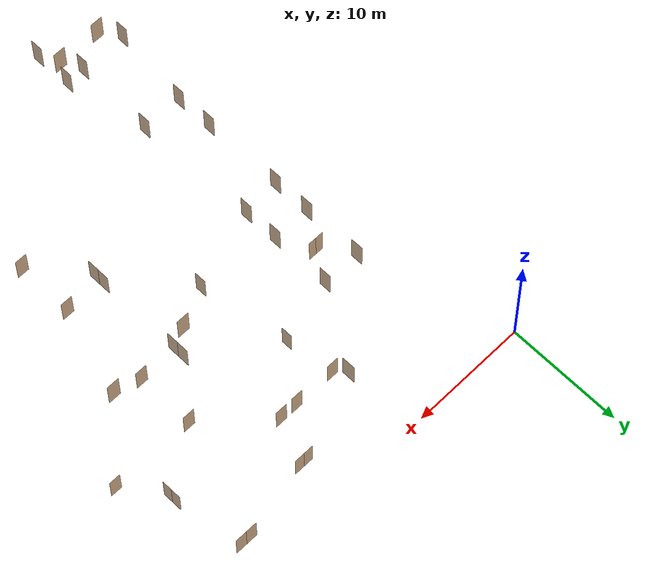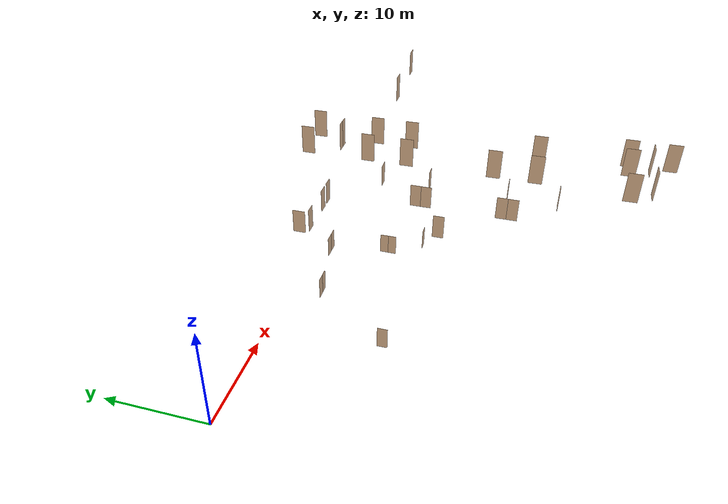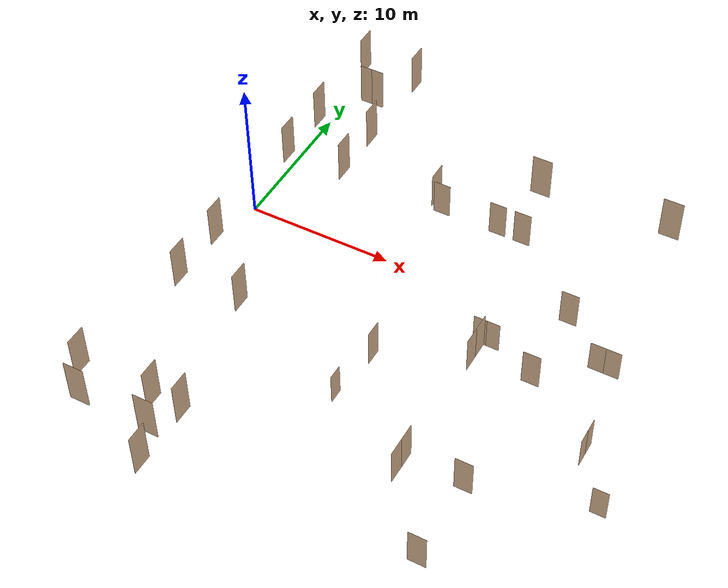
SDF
<sdf version="1.7">
 <world name="world">
  <include><uri>model://sun</uri></include>
  <model name="l1_door17">
   <pose>27.450000000000003 -8.125 0.0 0 0 -1.5707963267948966</pose>
   <link name="right">
    <pose>-0.4375 0 1.11 0 0 0</pose>
    <visual name="right_visual">
     <geometry><box><size>0.865 0.03 2.2</size></box></geometry>
     <material><ambient>0.5 0.25 0 0.6</ambient><diffuse>0.5 0.25 0 0.6</diffuse></material>
    </visual>
    <collision name="right_collision">
     <geometry><box><size>0.865 0.03 2.2</size></box></geometry>
     <surface><contact><collide_bitmask>0x02</collide_bitmask></contact></surface>
    </collision>
    <inertial>
     <mass>50.0</mass>
     <inertia><ixx>20.17041666666667</ixx><iyy>23.284270833333338</iyy><izz>3.121354166666667</izz></inertia>
    </inertial>
   </link>
   <joint name="right_joint" type="revolute">
    <parent>world</parent>
    <child>right</child>
    <axis><xyz>0 0 1</xyz><limit><lower>0</lower><upper>1.57</upper></limit></axis>
    <pose>-0.4375 0 0 0 0 0</pose>
   </joint>
   <link name="left">
    <pose>0.4375 0 1.11 0 0 0</pose>
    <visual name="left_visual">
     <geometry><box><size>0.865 0.03 2.2</size></box></geometry>
     <material><ambient>0.5 0.25 0 0.6</ambient><diffuse>0.5 0.25 0 0.6</diffuse></material>
    </visual>
    <collision name="left_collision">
     <geometry><box><size>0.865 0.03 2.2</size></box></geometry>
     <surface><contact><collide_bitmask>0x02</collide_bitmask></contact></surface>
    </collision>
    <inertial>
     <mass>50.0</mass>
     <inertia><ixx>20.17041666666667</ixx><iyy>23.284270833333338</iyy><izz>3.121354166666667</izz></inertia>
    </inertial>
   </link>
   <joint name="left_joint" type="revolute">
    <parent>world</parent>
    <child>left</child>
    <axis><xyz>0 0 1</xyz><limit><lower>-1.57</lower><upper>0</upper></limit></axis>
    <pose>0.4375 0 0 0 0 0</pose>
   </joint>
   <plugin name="door" filename="libdoor.so">
    <v_max_door>0.5</v_max_door>
    <a_max_door>0.3</a_max_door>
    <a_nom_door>0.15</a_nom_door>
    <dx_min_door>0.01</dx_min_door>
    <f_max_door>500.0</f_max_door>
    <door name="l1_door17" type="DoubleSwingDoor" left_joint_name="left_joint" right_joint_name="right_joint"/>
   </plugin>
  </model>
  <model name="dining_4">
   <pose>29.75 -11.600000000000001 0.0 0 0 3.141592653589793</pose>
   <plugin name="door" filename="libdoor.so">
    <v_max_door>0.5</v_max_door>
    <a_max_door>0.3</a_max_door>
    <a_nom_door>0.15</a_nom_door>
    <dx_min_door>0.01</dx_min_door>
    <f_max_door>500.0</f_max_door>
    <door name="dining_4" type="SwingDoor" left_joint_name="left_joint" right_joint_name="empty_joint"/>
   </plugin>
   <link name="left">
    <pose>0 0 1.11 0 0 0</pose>
    <visual name="left_visual">
     <geometry><box><size>0.99 0.03 2.2</size></box></geometry>
     <material><ambient>0.5 0.25 0 0.6</ambient><diffuse>0.5 0.25 0 0.6</diffuse></material>
    </visual>
    <collision name="left_collision">
     <geometry><box><size>0.99 0.03 2.2</size></box></geometry>
     <surface><contact><collide_bitmask>0x02</collide_bitmask></contact></surface>
    </collision>
    <inertial>
     <mass>50.0</mass>
     <inertia><ixx>20.17041666666667</ixx><iyy>24.250416666666673</iyy><izz>4.0875</izz></inertia>
    </inertial>
   </link>
   <joint name="left_joint" type="revolute">
    <parent>world</parent>
    <child>left</child>
    <axis><xyz>0 0 1</xyz><limit><lower>-1.57</lower><upper>0</upper></limit></axis>
    <pose>0.5 0 0 0 0 0</pose>
   </joint>
  </model>
  <model name="terrace">
   <pose>12.75 -11.25 0.0 0 0 1.5707963267948966</pose>
   <plugin name="door" filename="libdoor.so">
    <v_max_door>0.5</v_max_door>
    <a_max_door>0.3</a_max_door>
    <a_nom_door>0.15</a_nom_door>
    <dx_min_door>0.01</dx_min_door>
    <f_max_door>500.0</f_max_door>
    <door name="terrace" type="SwingDoor" left_joint_name="left_joint" right_joint_name="empty_joint"/>
   </plugin>
   <link name="left">
    <pose>0 0 1.11 0 0 0</pose>
    <visual name="left_visual">
     <geometry><box><size>0.99 0.03 2.2</size></box></geometry>
     <material><ambient>0.5 0.25 0 0.6</ambient><diffuse>0.5 0.25 0 0.6</diffuse></material>
    </visual>
    <collision name="left_collision">
     <geometry><box><size>0.99 0.03 2.2</size></box></geometry>
     <surface><contact><collide_bitmask>0x02</collide_bitmask></contact></surface>
    </collision>
    <inertial>
     <mass>50.0</mass>
     <inertia><ixx>20.17041666666667</ixx><iyy>24.250416666666673</iyy><izz>4.0875</izz></inertia>
    </inertial>
   </link>
   <joint name="left_joint" type="revolute">
    <parent>world</parent>
    <child>left</child>
    <axis><xyz>0 0 1</xyz><limit><lower>-1.57</lower><upper>0</upper></limit></axis>
    <pose>0.5 0 0 0 0 0</pose>
   </joint>
  </model>
  <model name="l1_door19">
   <pose>18.775000000000002 -3.4000000000000004 0.0 0 0 3.141592653589793</pose>
   <link name="right">
    <pose>0.4375 0 1.11 0 0 0</pose>
    <visual name="right_visual">
     <geometry><box><size>0.865 0.03 2.2</size></box></geometry>
     <material><ambient>0.5 0.25 0 0.6</ambient><diffuse>0.5 0.25 0 0.6</diffuse></material>
    </visual>
    <collision name="right_collision">
     <geometry><box><size>0.865 0.03 2.2</size></box></geometry>
     <surface><contact><collide_bitmask>0x02</collide_bitmask></contact></surface>
    </collision>
    <inertial>
     <mass>50.0</mass>
     <inertia><ixx>20.17041666666667</ixx><iyy>23.284270833333338</iyy><izz>3.121354166666667</izz></inertia>
    </inertial>
   </link>
   <joint name="right_joint" type="revolute">
    <parent>world</parent>
    <child>right</child>
    <axis><xyz>0 0 1</xyz><limit><lower>0</lower><upper>1.57</upper></limit></axis>
    <pose>0.4375 0 0 0 0 0</pose>
   </joint>
   <link name="left">
    <pose>-0.4375 0 1.11 0 0 0</pose>
    <visual name="left_visual">
     <geometry><box><size>0.865 0.03 2.2</size></box></geometry>
     <material><ambient>0.5 0.25 0 0.6</ambient><diffuse>0.5 0.25 0 0.6</diffuse></material>
    </visual>
    <collision name="left_collision">
     <geometry><box><size>0.865 0.03 2.2</size></box></geometry>
     <surface><contact><collide_bitmask>0x02</collide_bitmask></contact></surface>
    </collision>
    <inertial>
     <mass>50.0</mass>
     <inertia><ixx>20.17041666666667</ixx><iyy>23.284270833333338</iyy><izz>3.121354166666667</izz></inertia>
    </inertial>
   </link>
   <joint name="left_joint" type="revolute">
    <parent>world</parent>
    <child>left</child>
    <axis><xyz>0 0 1</xyz><limit><lower>-1.57</lower><upper>0</upper></limit></axis>
    <pose>-0.4375 0 0 0 0 0</pose>
   </joint>
   <plugin name="door" filename="libdoor.so">
    <v_max_door>0.5</v_max_door>
    <a_max_door>0.3</a_max_door>
    <a_nom_door>0.15</a_nom_door>
    <dx_min_door>0.01</dx_min_door>
    <f_max_door>500.0</f_max_door>
    <door name="l1_door19" type="DoubleSwingDoor" left_joint_name="left_joint" right_joint_name="right_joint"/>
   </plugin>
  </model>
  <model name="l1_door18">
   <pose>25.950000000000003 -2.0 0.0 0 0 3.141592653589793</pose>
   <link name="right">
    <pose>0.5 0 1.11 0 0 0</pose>
    <visual name="right_visual">
     <geometry><box><size>0.99 0.03 2.2</size></box></geometry>
     <material><ambient>0.5 0.25 0 0.6</ambient><diffuse>0.5 0.25 0 0.6</diffuse></material>
    </visual>
    <collision name="right_collision">
     <geometry><box><size>0.99 0.03 2.2</size></box></geometry>
     <surface><contact><collide_bitmask>0x02</collide_bitmask></contact></surface>
    </collision>
    <inertial>
     <mass>50.0</mass>
     <inertia><ixx>20.17041666666667</ixx><iyy>24.250416666666673</iyy><izz>4.0875</izz></inertia>
    </inertial>
   </link>
   <joint name="right_joint" type="revolute">
    <parent>world</parent>
    <child>right</child>
    <axis><xyz>0 0 1</xyz><limit><lower>0</lower><upper>1.57</upper></limit></axis>
    <pose>0.5 0 0 0 0 0</pose>
   </joint>
   <link name="left">
    <pose>-0.5 0 1.11 0 0 0</pose>
    <visual name="left_visual">
     <geometry><box><size>0.99 0.03 2.2</size></box></geometry>
     <material><ambient>0.5 0.25 0 0.6</ambient><diffuse>0.5 0.25 0 0.6</diffuse></material>
    </visual>
    <collision name="left_collision">
     <geometry><box><size>0.99 0.03 2.2</size></box></geometry>
     <surface><contact><collide_bitmask>0x02</collide_bitmask></contact></surface>
    </collision>
    <inertial>
     <mass>50.0</mass>
     <inertia><ixx>20.17041666666667</ixx><iyy>24.250416666666673</iyy><izz>4.0875</izz></inertia>
    </inertial>
   </link>
   <joint name="left_joint" type="revolute">
    <parent>world</parent>
    <child>left</child>
    <axis><xyz>0 0 1</xyz><limit><lower>-1.57</lower><upper>0</upper></limit></axis>
    <pose>-0.5 0 0 0 0 0</pose>
   </joint>
   <plugin name="door" filename="libdoor.so">
    <v_max_door>0.5</v_max_door>
    <a_max_door>0.3</a_max_door>
    <a_nom_door>0.15</a_nom_door>
    <dx_min_door>0.01</dx_min_door>
    <f_max_door>500.0</f_max_door>
    <door name="l1_door18" type="DoubleSwingDoor" left_joint_name="left_joint" right_joint_name="right_joint"/>
   </plugin>
  </model>
  <model name="conf_door1">
   <pose>15.600000000000001 -3.6500000000000004 10.0 0 0 3.141592653589793</pose>
   <plugin name="door" filename="libdoor.so">
    <v_max_door>0.5</v_max_door>
    <a_max_door>0.3</a_max_door>
    <a_nom_door>0.15</a_nom_door>
    <dx_min_door>0.01</dx_min_door>
    <f_max_door>500.0</f_max_door>
    <door name="conf_door1" type="SwingDoor" left_joint_name="left_joint" right_joint_name="empty_joint"/>
   </plugin>
   <link name="left">
    <pose>0 0 1.11 0 0 0</pose>
    <visual name="left_visual">
     <geometry><box><size>0.9900000000000018 0.03 2.2</size></box></geometry>
     <material><ambient>0.5 0.25 0 0.6</ambient><diffuse>0.5 0.25 0 0.6</diffuse></material>
    </visual>
    <collision name="left_collision">
     <geometry><box><size>0.9900000000000018 0.03 2.2</size></box></geometry>
     <surface><contact><collide_bitmask>0x02</collide_bitmask></contact></surface>
    </collision>
    <inertial>
     <mass>50.0</mass>
     <inertia><ixx>20.17041666666667</ixx><iyy>24.250416666666688</iyy><izz>4.0875000000000155</izz></inertia>
    </inertial>
   </link>
   <joint name="left_joint" type="revolute">
    <parent>world</parent>
    <child>left</child>
    <axis><xyz>0 0 1</xyz><limit><lower>-1.57</lower><upper>0</upper></limit></axis>
    <pose>0.5000000000000009 0 0 0 0 0</pose>
   </joint>
  </model>
  <model name="conf_door2">
   <pose>19.1 -3.6500000000000004 10.0 0 0 0.0</pose>
   <plugin name="door" filename="libdoor.so">
    <v_max_door>0.5</v_max_door>
    <a_max_door>0.3</a_max_door>
    <a_nom_door>0.15</a_nom_door>
    <dx_min_door>0.01</dx_min_door>
    <f_max_door>500.0</f_max_door>
    <door name="conf_door2" type="SwingDoor" left_joint_name="empty_joint" right_joint_name="right_joint"/>
   </plugin>
   <link name="right">
    <pose>0 0 1.11 0 0 0</pose>
    <visual name="right_visual">
     <geometry><box><size>0.99 0.03 2.2</size></box></geometry>
     <material><ambient>0.5 0.25 0 0.6</ambient><diffuse>0.5 0.25 0 0.6</diffuse></material>
    </visual>
    <collision name="right_collision">
     <geometry><box><size>0.99 0.03 2.2</size></box></geometry>
     <surface><contact><collide_bitmask>0x02</collide_bitmask></contact></surface>
    </collision>
    <inertial>
     <mass>50.0</mass>
     <inertia><ixx>20.17041666666667</ixx><iyy>24.250416666666673</iyy><izz>4.0875</izz></inertia>
    </inertial>
   </link>
   <joint name="right_joint" type="revolute">
    <parent>world</parent>
    <child>right</child>
    <axis><xyz>0 0 1</xyz><limit><lower>0</lower><upper>1.57</upper></limit></axis>
    <pose>0.5 0 0 0 0 0</pose>
   </joint>
  </model>
  <model name="conf_door3">
   <pose>20.6 -3.6500000000000004 10.0 0 0 3.141592653589793</pose>
   <plugin name="door" filename="libdoor.so">
    <v_max_door>0.5</v_max_door>
    <a_max_door>0.3</a_max_door>
    <a_nom_door>0.15</a_nom_door>
    <dx_min_door>0.01</dx_min_door>
    <f_max_door>500.0</f_max_door>
    <door name="conf_door3" type="SwingDoor" left_joint_name="left_joint" right_joint_name="empty_joint"/>
   </plugin>
   <link name="left">
    <pose>0 0 1.11 0 0 0</pose>
    <visual name="left_visual">
     <geometry><box><size>0.99 0.03 2.2</size></box></geometry>
     <material><ambient>0.5 0.25 0 0.6</ambient><diffuse>0.5 0.25 0 0.6</diffuse></material>
    </visual>
    <collision name="left_collision">
     <geometry><box><size>0.99 0.03 2.2</size></box></geometry>
     <surface><contact><collide_bitmask>0x02</collide_bitmask></contact></surface>
    </collision>
    <inertial>
     <mass>50.0</mass>
     <inertia><ixx>20.17041666666667</ixx><iyy>24.250416666666673</iyy><izz>4.0875</izz></inertia>
    </inertial>
   </link>
   <joint name="left_joint" type="revolute">
    <parent>world</parent>
    <child>left</child>
    <axis><xyz>0 0 1</xyz><limit><lower>-1.57</lower><upper>0</upper></limit></axis>
    <pose>0.5 0 0 0 0 0</pose>
   </joint>
  </model>
  <model name="conf_kitchen_door1">
   <pose>22.1 -12.4 10.0 0 0 1.5707963267948966</pose>
   <link name="right">
    <pose>0.5 0 1.11 0 0 0</pose>
    <visual name="right_visual">
     <geometry><box><size>0.99 0.03 2.2</size></box></geometry>
     <material><ambient>0.5 0.25 0 0.6</ambient><diffuse>0.5 0.25 0 0.6</diffuse></material>
    </visual>
    <collision name="right_collision">
     <geometry><box><size>0.99 0.03 2.2</size></box></geometry>
     <surface><contact><collide_bitmask>0x02</collide_bitmask></contact></surface>
    </collision>
    <inertial>
     <mass>50.0</mass>
     <inertia><ixx>20.17041666666667</ixx><iyy>24.250416666666673</iyy><izz>4.0875</izz></inertia>
    </inertial>
   </link>
   <joint name="right_joint" type="revolute">
    <parent>world</parent>
    <child>right</child>
    <axis><xyz>0 0 1</xyz><limit><lower>0</lower><upper>1.57</upper></limit></axis>
    <pose>0.5 0 0 0 0 0</pose>
   </joint>
   <link name="left">
    <pose>-0.5 0 1.11 0 0 0</pose>
    <visual name="left_visual">
     <geometry><box><size>0.99 0.03 2.2</size></box></geometry>
     <material><ambient>0.5 0.25 0 0.6</ambient><diffuse>0.5 0.25 0 0.6</diffuse></material>
    </visual>
    <collision name="left_collision">
     <geometry><box><size>0.99 0.03 2.2</size></box></geometry>
     <surface><contact><collide_bitmask>0x02</collide_bitmask></contact></surface>
    </collision>
    <inertial>
     <mass>50.0</mass>
     <inertia><ixx>20.17041666666667</ixx><iyy>24.250416666666673</iyy><izz>4.0875</izz></inertia>
    </inertial>
   </link>
   <joint name="left_joint" type="revolute">
    <parent>world</parent>
    <child>left</child>
    <axis><xyz>0 0 1</xyz><limit><lower>-1.57</lower><upper>0</upper></limit></axis>
    <pose>-0.5 0 0 0 0 0</pose>
   </joint>
   <plugin name="door" filename="libdoor.so">
    <v_max_door>0.5</v_max_door>
    <a_max_door>0.3</a_max_door>
    <a_nom_door>0.15</a_nom_door>
    <dx_min_door>0.01</dx_min_door>
    <f_max_door>500.0</f_max_door>
    <door name="conf_kitchen_door1" type="DoubleSwingDoor" left_joint_name="left_joint" right_joint_name="right_joint"/>
   </plugin>
  </model>
  <model name="conf_kitchen_door2">
   <pose>22.1 -20.5 10.0 0 0 1.5707963267948966</pose>
   <link name="right">
    <pose>0.5 0 1.11 0 0 0</pose>
    <visual name="right_visual">
     <geometry><box><size>0.99 0.03 2.2</size></box></geometry>
     <material><ambient>0.5 0.25 0 0.6</ambient><diffuse>0.5 0.25 0 0.6</diffuse></material>
    </visual>
    <collision name="right_collision">
     <geometry><box><size>0.99 0.03 2.2</size></box></geometry>
     <surface><contact><collide_bitmask>0x02</collide_bitmask></contact></surface>
    </collision>
    <inertial>
     <mass>50.0</mass>
     <inertia><ixx>20.17041666666667</ixx><iyy>24.250416666666673</iyy><izz>4.0875</izz></inertia>
    </inertial>
   </link>
   <joint name="right_joint" type="revolute">
    <parent>world</parent>
    <child>right</child>
    <axis><xyz>0 0 1</xyz><limit><lower>0</lower><upper>1.57</upper></limit></axis>
    <pose>0.5 0 0 0 0 0</pose>
   </joint>
   <link name="left">
    <pose>-0.5 0 1.11 0 0 0</pose>
    <visual name="left_visual">
     <geometry><box><size>0.99 0.03 2.2</size></box></geometry>
     <material><ambient>0.5 0.25 0 0.6</ambient><diffuse>0.5 0.25 0 0.6</diffuse></material>
    </visual>
    <collision name="left_collision">
     <geometry><box><size>0.99 0.03 2.2</size></box></geometry>
     <surface><contact><collide_bitmask>0x02</collide_bitmask></contact></surface>
    </collision>
    <inertial>
     <mass>50.0</mass>
     <inertia><ixx>20.17041666666667</ixx><iyy>24.250416666666673</iyy><izz>4.0875</izz></inertia>
    </inertial>
   </link>
   <joint name="left_joint" type="revolute">
    <parent>world</parent>
    <child>left</child>
    <axis><xyz>0 0 1</xyz><limit><lower>-1.57</lower><upper>0</upper></limit></axis>
    <pose>-0.5 0 0 0 0 0</pose>
   </joint>
   <plugin name="door" filename="libdoor.so">
    <v_max_door>0.5</v_max_door>
    <a_max_door>0.3</a_max_door>
    <a_nom_door>0.15</a_nom_door>
    <dx_min_door>0.01</dx_min_door>
    <f_max_door>500.0</f_max_door>
    <door name="conf_kitchen_door2" type="DoubleSwingDoor" left_joint_name="left_joint" right_joint_name="right_joint"/>
   </plugin>
  </model>
  <model name="conf_door0">
   <pose>14.85 -2.825 10.0 0 0 1.5707963267948966</pose>
   <plugin name="door" filename="libdoor.so">
    <v_max_door>0.5</v_max_door>
    <a_max_door>0.3</a_max_door>
    <a_nom_door>0.15</a_nom_door>
    <dx_min_door>0.01</dx_min_door>
    <f_max_door>500.0</f_max_door>
    <door name="conf_door0" type="SwingDoor" left_joint_name="left_joint" right_joint_name="empty_joint"/>
   </plugin>
   <link name="left">
    <pose>0 0 1.11 0 0 0</pose>
    <visual name="left_visual">
     <geometry><box><size>1.1400000000000003 0.03 2.2</size></box></geometry>
     <material><ambient>0.5 0.25 0 0.6</ambient><diffuse>0.5 0.25 0 0.6</diffuse></material>
    </visual>
    <collision name="left_collision">
     <geometry><box><size>1.1400000000000003 0.03 2.2</size></box></geometry>
     <surface><contact><collide_bitmask>0x02</collide_bitmask></contact></surface>
    </collision>
    <inertial>
     <mass>50.0</mass>
     <inertia><ixx>20.17041666666667</ixx><iyy>25.581666666666674</iyy><izz>5.418750000000003</izz></inertia>
    </inertial>
   </link>
   <joint name="left_joint" type="revolute">
    <parent>world</parent>
    <child>left</child>
    <axis><xyz>0 0 1</xyz><limit><lower>-1.57</lower><upper>0</upper></limit></axis>
    <pose>0.5750000000000002 0 0 0 0 0</pose>
   </joint>
  </model>
  <model name="ballroom_back1">
   <pose>25.35 -12.65 10.0 0 0 0.0</pose>
   <plugin name="door" filename="libdoor.so">
    <v_max_door>0.5</v_max_door>
    <a_max_door>0.3</a_max_door>
    <a_nom_door>0.15</a_nom_door>
    <dx_min_door>0.01</dx_min_door>
    <f_max_door>500.0</f_max_door>
    <door name="ballroom_back1" type="SwingDoor" left_joint_name="left_joint" right_joint_name="empty_joint"/>
   </plugin>
   <link name="left">
    <pose>0 0 1.11 0 0 0</pose>
    <visual name="left_visual">
     <geometry><box><size>0.99 0.03 2.2</size></box></geometry>
     <material><ambient>0.5 0.25 0 0.6</ambient><diffuse>0.5 0.25 0 0.6</diffuse></material>
    </visual>
    <collision name="left_collision">
     <geometry><box><size>0.99 0.03 2.2</size></box></geometry>
     <surface><contact><collide_bitmask>0x02</collide_bitmask></contact></surface>
    </collision>
    <inertial>
     <mass>50.0</mass>
     <inertia><ixx>20.17041666666667</ixx><iyy>24.250416666666673</iyy><izz>4.0875</izz></inertia>
    </inertial>
   </link>
   <joint name="left_joint" type="revolute">
    <parent>world</parent>
    <child>left</child>
    <axis><xyz>0 0 1</xyz><limit><lower>-1.57</lower><upper>0</upper></limit></axis>
    <pose>0.5 0 0 0 0 0</pose>
   </joint>
  </model>
  <model name="ballroom_back2">
   <pose>25.35 -20.25 10.0 0 0 0.0</pose>
   <plugin name="door" filename="libdoor.so">
    <v_max_door>0.5</v_max_door>
    <a_max_door>0.3</a_max_door>
    <a_nom_door>0.15</a_nom_door>
    <dx_min_door>0.01</dx_min_door>
    <f_max_door>500.0</f_max_door>
    <door name="ballroom_back2" type="SwingDoor" left_joint_name="empty_joint" right_joint_name="right_joint"/>
   </plugin>
   <link name="right">
    <pose>0 0 1.11 0 0 0</pose>
    <visual name="right_visual">
     <geometry><box><size>0.99 0.03 2.2</size></box></geometry>
     <material><ambient>0.5 0.25 0 0.6</ambient><diffuse>0.5 0.25 0 0.6</diffuse></material>
    </visual>
    <collision name="right_collision">
     <geometry><box><size>0.99 0.03 2.2</size></box></geometry>
     <surface><contact><collide_bitmask>0x02</collide_bitmask></contact></surface>
    </collision>
    <inertial>
     <mass>50.0</mass>
     <inertia><ixx>20.17041666666667</ixx><iyy>24.250416666666673</iyy><izz>4.0875</izz></inertia>
    </inertial>
   </link>
   <joint name="right_joint" type="revolute">
    <parent>world</parent>
    <child>right</child>
    <axis><xyz>0 0 1</xyz><limit><lower>0</lower><upper>1.57</upper></limit></axis>
    <pose>0.5 0 0 0 0 0</pose>
   </joint>
  </model>
  <model name="ballroom_back3">
   <pose>25.348625000000006 -25.0 10.0 0 0 0.0</pose>
   <plugin name="door" filename="libdoor.so">
    <v_max_door>0.5</v_max_door>
    <a_max_door>0.3</a_max_door>
    <a_nom_door>0.15</a_nom_door>
    <dx_min_door>0.01</dx_min_door>
    <f_max_door>500.0</f_max_door>
    <door name="ballroom_back3" type="SwingDoor" left_joint_name="empty_joint" right_joint_name="right_joint"/>
   </plugin>
   <link name="right">
    <pose>0 0 1.11 0 0 0</pose>
    <visual name="right_visual">
     <geometry><box><size>0.9915500000000053 0.03 2.2</size></box></geometry>
     <material><ambient>0.5 0.25 0 0.6</ambient><diffuse>0.5 0.25 0 0.6</diffuse></material>
    </visual>
    <collision name="right_collision">
     <geometry><box><size>0.9915500000000053 0.03 2.2</size></box></geometry>
     <surface><contact><collide_bitmask>0x02</collide_bitmask></contact></surface>
    </collision>
    <inertial>
     <mass>50.0</mass>
     <inertia><ixx>20.17041666666667</ixx><iyy>24.263214177083384</iyy><izz>4.100297510416711</izz></inertia>
    </inertial>
   </link>
   <joint name="right_joint" type="revolute">
    <parent>world</parent>
    <child>right</child>
    <axis><xyz>0 0 1</xyz><limit><lower>0</lower><upper>1.57</upper></limit></axis>
    <pose>0.5007750000000026 0 0 0 0 0</pose>
   </joint>
  </model>
  <model name="ballroom_back0">
   <pose>25.35 -7.9 10.0 0 0 0.0</pose>
   <plugin name="door" filename="libdoor.so">
    <v_max_door>0.5</v_max_door>
    <a_max_door>0.3</a_max_door>
    <a_nom_door>0.15</a_nom_door>
    <dx_min_door>0.01</dx_min_door>
    <f_max_door>500.0</f_max_door>
    <door name="ballroom_back0" type="SwingDoor" left_joint_name="left_joint" right_joint_name="empty_joint"/>
   </plugin>
   <link name="left">
    <pose>0 0 1.11 0 0 0</pose>
    <visual name="left_visual">
     <geometry><box><size>0.99 0.03 2.2</size></box></geometry>
     <material><ambient>0.5 0.25 0 0.6</ambient><diffuse>0.5 0.25 0 0.6</diffuse></material>
    </visual>
    <collision name="left_collision">
     <geometry><box><size>0.99 0.03 2.2</size></box></geometry>
     <surface><contact><collide_bitmask>0x02</collide_bitmask></contact></surface>
    </collision>
    <inertial>
     <mass>50.0</mass>
     <inertia><ixx>20.17041666666667</ixx><iyy>24.250416666666673</iyy><izz>4.0875</izz></inertia>
    </inertial>
   </link>
   <joint name="left_joint" type="revolute">
    <parent>world</parent>
    <child>left</child>
    <axis><xyz>0 0 1</xyz><limit><lower>-1.57</lower><upper>0</upper></limit></axis>
    <pose>0.5 0 0 0 0 0</pose>
   </joint>
  </model>
  <model name="conf_kitchen_door0">
   <pose>17.450000000000003 -14.950000000000001 10.0 0 0 -1.5707963267948966</pose>
   <plugin name="door" filename="libdoor.so">
    <v_max_door>0.5</v_max_door>
    <a_max_door>0.3</a_max_door>
    <a_nom_door>0.15</a_nom_door>
    <dx_min_door>0.01</dx_min_door>
    <f_max_door>500.0</f_max_door>
    <door name="conf_kitchen_door0" type="SwingDoor" left_joint_name="empty_joint" right_joint_name="right_joint"/>
   </plugin>
   <link name="right">
    <pose>0 0 1.11 0 0 0</pose>
    <visual name="right_visual">
     <geometry><box><size>0.99 0.03 2.2</size></box></geometry>
     <material><ambient>0.5 0.25 0 0.6</ambient><diffuse>0.5 0.25 0 0.6</diffuse></material>
    </visual>
    <collision name="right_collision">
     <geometry><box><size>0.99 0.03 2.2</size></box></geometry>
     <surface><contact><collide_bitmask>0x02</collide_bitmask></contact></surface>
    </collision>
    <inertial>
     <mass>50.0</mass>
     <inertia><ixx>20.17041666666667</ixx><iyy>24.250416666666673</iyy><izz>4.0875</izz></inertia>
    </inertial>
   </link>
   <joint name="right_joint" type="revolute">
    <parent>world</parent>
    <child>right</child>
    <axis><xyz>0 0 1</xyz><limit><lower>0</lower><upper>1.57</upper></limit></axis>
    <pose>0.5 0 0 0 0 0</pose>
   </joint>
  </model>
  <model name="room1_door">
   <pose>14.7 -5.25 20.0 0 0 -1.5707963267948966</pose>
   <plugin name="door" filename="libdoor.so">
    <v_max_door>0.5</v_max_door>
    <a_max_door>0.3</a_max_door>
    <a_nom_door>0.15</a_nom_door>
    <dx_min_door>0.01</dx_min_door>
    <f_max_door>500.0</f_max_door>
    <door name="room1_door" type="SwingDoor" left_joint_name="left_joint" right_joint_name="empty_joint"/>
   </plugin>
   <link name="left">
    <pose>0 0 1.11 0 0 0</pose>
    <visual name="left_visual">
     <geometry><box><size>0.99 0.03 2.2</size></box></geometry>
     <material><ambient>0.5 0.25 0 0.6</ambient><diffuse>0.5 0.25 0 0.6</diffuse></material>
    </visual>
    <collision name="left_collision">
     <geometry><box><size>0.99 0.03 2.2</size></box></geometry>
     <surface><contact><collide_bitmask>0x02</collide_bitmask></contact></surface>
    </collision>
    <inertial>
     <mass>50.0</mass>
     <inertia><ixx>20.17041666666667</ixx><iyy>24.250416666666673</iyy><izz>4.0875</izz></inertia>
    </inertial>
   </link>
   <joint name="left_joint" type="revolute">
    <parent>world</parent>
    <child>left</child>
    <axis><xyz>0 0 1</xyz><limit><lower>-1.57</lower><upper>0</upper></limit></axis>
    <pose>0.5 0 0 0 0 0</pose>
   </joint>
  </model>
  <model name="room2_door">
   <pose>11.7 -5.25 20.0 0 0 -1.5707963267948966</pose>
   <plugin name="door" filename="libdoor.so">
    <v_max_door>0.5</v_max_door>
    <a_max_door>0.3</a_max_door>
    <a_nom_door>0.15</a_nom_door>
    <dx_min_door>0.01</dx_min_door>
    <f_max_door>500.0</f_max_door>
    <door name="room2_door" type="SwingDoor" left_joint_name="empty_joint" right_joint_name="right_joint"/>
   </plugin>
   <link name="right">
    <pose>0 0 1.11 0 0 0</pose>
    <visual name="right_visual">
     <geometry><box><size>0.99 0.03 2.2</size></box></geometry>
     <material><ambient>0.5 0.25 0 0.6</ambient><diffuse>0.5 0.25 0 0.6</diffuse></material>
    </visual>
    <collision name="right_collision">
     <geometry><box><size>0.99 0.03 2.2</size></box></geometry>
     <surface><contact><collide_bitmask>0x02</collide_bitmask></contact></surface>
    </collision>
    <inertial>
     <mass>50.0</mass>
     <inertia><ixx>20.17041666666667</ixx><iyy>24.250416666666673</iyy><izz>4.0875</izz></inertia>
    </inertial>
   </link>
   <joint name="right_joint" type="revolute">
    <parent>world</parent>
    <child>right</child>
    <axis><xyz>0 0 1</xyz><limit><lower>0</lower><upper>1.57</upper></limit></axis>
    <pose>0.5 0 0 0 0 0</pose>
   </joint>
  </model>
  <model name="room3_door">
   <pose>11.7 -10.0 20.0 0 0 -1.5707963267948966</pose>
   <plugin name="door" filename="libdoor.so">
    <v_max_door>0.5</v_max_door>
    <a_max_door>0.3</a_max_door>
    <a_nom_door>0.15</a_nom_door>
    <dx_min_door>0.01</dx_min_door>
    <f_max_door>500.0</f_max_door>
    <door name="room3_door" type="SwingDoor" left_joint_name="empty_joint" right_joint_name="right_joint"/>
   </plugin>
   <link name="right">
    <pose>0 0 1.11 0 0 0</pose>
    <visual name="right_visual">
     <geometry><box><size>0.99 0.03 2.2</size></box></geometry>
     <material><ambient>0.5 0.25 0 0.6</ambient><diffuse>0.5 0.25 0 0.6</diffuse></material>
    </visual>
    <collision name="right_collision">
     <geometry><box><size>0.99 0.03 2.2</size></box></geometry>
     <surface><contact><collide_bitmask>0x02</collide_bitmask></contact></surface>
    </collision>
    <inertial>
     <mass>50.0</mass>
     <inertia><ixx>20.17041666666667</ixx><iyy>24.250416666666673</iyy><izz>4.0875</izz></inertia>
    </inertial>
   </link>
   <joint name="right_joint" type="revolute">
    <parent>world</parent>
    <child>right</child>
    <axis><xyz>0 0 1</xyz><limit><lower>0</lower><upper>1.57</upper></limit></axis>
    <pose>0.5 0 0 0 0 0</pose>
   </joint>
  </model>
  <model name="room4_door">
   <pose>11.7 -13.0 20.0 0 0 1.5707963267948966</pose>
   <plugin name="door" filename="libdoor.so">
    <v_max_door>0.5</v_max_door>
    <a_max_door>0.3</a_max_door>
    <a_nom_door>0.15</a_nom_door>
    <dx_min_door>0.01</dx_min_door>
    <f_max_door>500.0</f_max_door>
    <door name="room4_door" type="SwingDoor" left_joint_name="left_joint" right_joint_name="empty_joint"/>
   </plugin>
   <link name="left">
    <pose>0 0 1.11 0 0 0</pose>
    <visual name="left_visual">
     <geometry><box><size>0.99 0.03 2.2</size></box></geometry>
     <material><ambient>0.5 0.25 0 0.6</ambient><diffuse>0.5 0.25 0 0.6</diffuse></material>
    </visual>
    <collision name="left_collision">
     <geometry><box><size>0.99 0.03 2.2</size></box></geometry>
     <surface><contact><collide_bitmask>0x02</collide_bitmask></contact></surface>
    </collision>
    <inertial>
     <mass>50.0</mass>
     <inertia><ixx>20.17041666666667</ixx><iyy>24.250416666666673</iyy><izz>4.0875</izz></inertia>
    </inertial>
   </link>
   <joint name="left_joint" type="revolute">
    <parent>world</parent>
    <child>left</child>
    <axis><xyz>0 0 1</xyz><limit><lower>-1.57</lower><upper>0</upper></limit></axis>
    <pose>0.5 0 0 0 0 0</pose>
   </joint>
  </model>
  <model name="room5_door">
   <pose>11.7 -19.5 20.0 0 0 -1.5707963267948966</pose>
   <plugin name="door" filename="libdoor.so">
    <v_max_door>0.5</v_max_door>
    <a_max_door>0.3</a_max_door>
    <a_nom_door>0.15</a_nom_door>
    <dx_min_door>0.01</dx_min_door>
    <f_max_door>500.0</f_max_door>
    <door name="room5_door" type="SwingDoor" left_joint_name="empty_joint" right_joint_name="right_joint"/>
   </plugin>
   <link name="right">
    <pose>0 0 1.11 0 0 0</pose>
    <visual name="right_visual">
     <geometry><box><size>0.99 0.03 2.2</size></box></geometry>
     <material><ambient>0.5 0.25 0 0.6</ambient><diffuse>0.5 0.25 0 0.6</diffuse></material>
    </visual>
    <collision name="right_collision">
     <geometry><box><size>0.99 0.03 2.2</size></box></geometry>
     <surface><contact><collide_bitmask>0x02</collide_bitmask></contact></surface>
    </collision>
    <inertial>
     <mass>50.0</mass>
     <inertia><ixx>20.17041666666667</ixx><iyy>24.250416666666673</iyy><izz>4.0875</izz></inertia>
    </inertial>
   </link>
   <joint name="right_joint" type="revolute">
    <parent>world</parent>
    <child>right</child>
    <axis><xyz>0 0 1</xyz><limit><lower>0</lower><upper>1.57</upper></limit></axis>
    <pose>0.5 0 0 0 0 0</pose>
   </joint>
  </model>
  <model name="room6_door">
   <pose>11.7 -22.5 20.0 0 0 1.5707963267948966</pose>
   <plugin name="door" filename="libdoor.so">
    <v_max_door>0.5</v_max_door>
    <a_max_door>0.3</a_max_door>
    <a_nom_door>0.15</a_nom_door>
    <dx_min_door>0.01</dx_min_door>
    <f_max_door>500.0</f_max_door>
    <door name="room6_door" type="SwingDoor" left_joint_name="left_joint" right_joint_name="empty_joint"/>
   </plugin>
   <link name="left">
    <pose>0 0 1.11 0 0 0</pose>
    <visual name="left_visual">
     <geometry><box><size>0.99 0.03 2.2</size></box></geometry>
     <material><ambient>0.5 0.25 0 0.6</ambient><diffuse>0.5 0.25 0 0.6</diffuse></material>
    </visual>
    <collision name="left_collision">
     <geometry><box><size>0.99 0.03 2.2</size></box></geometry>
     <surface><contact><collide_bitmask>0x02</collide_bitmask></contact></surface>
    </collision>
    <inertial>
     <mass>50.0</mass>
     <inertia><ixx>20.17041666666667</ixx><iyy>24.250416666666673</iyy><izz>4.0875</izz></inertia>
    </inertial>
   </link>
   <joint name="left_joint" type="revolute">
    <parent>world</parent>
    <child>left</child>
    <axis><xyz>0 0 1</xyz><limit><lower>-1.57</lower><upper>0</upper></limit></axis>
    <pose>0.5 0 0 0 0 0</pose>
   </joint>
  </model>
  <model name="room7_door">
   <pose>10.95 -29.0 20.0 0 0 -1.5707963267948966</pose>
   <plugin name="door" filename="libdoor.so">
    <v_max_door>0.5</v_max_door>
    <a_max_door>0.3</a_max_door>
    <a_nom_door>0.15</a_nom_door>
    <dx_min_door>0.01</dx_min_door>
    <f_max_door>500.0</f_max_door>
    <door name="room7_door" type="SwingDoor" left_joint_name="empty_joint" right_joint_name="right_joint"/>
   </plugin>
   <link name="right">
    <pose>0 0 1.11 0 0 0</pose>
    <visual name="right_visual">
     <geometry><box><size>0.99 0.03 2.2</size></box></geometry>
     <material><ambient>0.5 0.25 0 0.6</ambient><diffuse>0.5 0.25 0 0.6</diffuse></material>
    </visual>
    <collision name="right_collision">
     <geometry><box><size>0.99 0.03 2.2</size></box></geometry>
     <surface><contact><collide_bitmask>0x02</collide_bitmask></contact></surface>
    </collision>
    <inertial>
     <mass>50.0</mass>
     <inertia><ixx>20.17041666666667</ixx><iyy>24.250416666666673</iyy><izz>4.0875</izz></inertia>
    </inertial>
   </link>
   <joint name="right_joint" type="revolute">
    <parent>world</parent>
    <child>right</child>
    <axis><xyz>0 0 1</xyz><limit><lower>0</lower><upper>1.57</upper></limit></axis>
    <pose>0.5 0 0 0 0 0</pose>
   </joint>
  </model>
  <model name="room8_door">
   <pose>11.95 -30.5 20.0 0 0 0.0</pose>
   <plugin name="door" filename="libdoor.so">
    <v_max_door>0.5</v_max_door>
    <a_max_door>0.3</a_max_door>
    <a_nom_door>0.15</a_nom_door>
    <dx_min_door>0.01</dx_min_door>
    <f_max_door>500.0</f_max_door>
    <door name="room8_door" type="SwingDoor" left_joint_name="empty_joint" right_joint_name="right_joint"/>
   </plugin>
   <link name="right">
    <pose>0 0 1.11 0 0 0</pose>
    <visual name="right_visual">
     <geometry><box><size>0.99 0.03 2.2</size></box></geometry>
     <material><ambient>0.5 0.25 0 0.6</ambient><diffuse>0.5 0.25 0 0.6</diffuse></material>
    </visual>
    <collision name="right_collision">
     <geometry><box><size>0.99 0.03 2.2</size></box></geometry>
     <surface><contact><collide_bitmask>0x02</collide_bitmask></contact></surface>
    </collision>
    <inertial>
     <mass>50.0</mass>
     <inertia><ixx>20.17041666666667</ixx><iyy>24.250416666666673</iyy><izz>4.0875</izz></inertia>
    </inertial>
   </link>
   <joint name="right_joint" type="revolute">
    <parent>world</parent>
    <child>right</child>
    <axis><xyz>0 0 1</xyz><limit><lower>0</lower><upper>1.57</upper></limit></axis>
    <pose>0.5 0 0 0 0 0</pose>
   </joint>
  </model>
  <model name="room9_door">
   <pose>15.45 -30.5 20.0 0 0 0.0</pose>
   <plugin name="door" filename="libdoor.so">
    <v_max_door>0.5</v_max_door>
    <a_max_door>0.3</a_max_door>
    <a_nom_door>0.15</a_nom_door>
    <dx_min_door>0.01</dx_min_door>
    <f_max_door>500.0</f_max_door>
    <door name="room9_door" type="SwingDoor" left_joint_name="empty_joint" right_joint_name="right_joint"/>
   </plugin>
   <link name="right">
    <pose>0 0 1.11 0 0 0</pose>
    <visual name="right_visual">
     <geometry><box><size>0.99 0.03 2.2</size></box></geometry>
     <material><ambient>0.5 0.25 0 0.6</ambient><diffuse>0.5 0.25 0 0.6</diffuse></material>
    </visual>
    <collision name="right_collision">
     <geometry><box><size>0.99 0.03 2.2</size></box></geometry>
     <surface><contact><collide_bitmask>0x02</collide_bitmask></contact></surface>
    </collision>
    <inertial>
     <mass>50.0</mass>
     <inertia><ixx>20.17041666666667</ixx><iyy>24.250416666666673</iyy><izz>4.0875</izz></inertia>
    </inertial>
   </link>
   <joint name="right_joint" type="revolute">
    <parent>world</parent>
    <child>right</child>
    <axis><xyz>0 0 1</xyz><limit><lower>0</lower><upper>1.57</upper></limit></axis>
    <pose>0.5 0 0 0 0 0</pose>
   </joint>
  </model>
  <model name="door2">
   <pose>14.7 -29.0 20.0 0 0 1.5707963267948966</pose>
   <plugin name="door" filename="libdoor.so">
    <v_max_door>0.5</v_max_door>
    <a_max_door>0.3</a_max_door>
    <a_nom_door>0.15</a_nom_door>
    <dx_min_door>0.01</dx_min_door>
    <f_max_door>500.0</f_max_door>
    <door name="door2" type="SwingDoor" left_joint_name="empty_joint" right_joint_name="right_joint"/>
   </plugin>
   <link name="right">
    <pose>0 0 1.11 0 0 0</pose>
    <visual name="right_visual">
     <geometry><box><size>0.99 0.03 2.2</size></box></geometry>
     <material><ambient>0.5 0.25 0 0.6</ambient><diffuse>0.5 0.25 0 0.6</diffuse></material>
    </visual>
    <collision name="right_collision">
     <geometry><box><size>0.99 0.03 2.2</size></box></geometry>
     <surface><contact><collide_bitmask>0x02</collide_bitmask></contact></surface>
    </collision>
    <inertial>
     <mass>50.0</mass>
     <inertia><ixx>20.17041666666667</ixx><iyy>24.250416666666673</iyy><izz>4.0875</izz></inertia>
    </inertial>
   </link>
   <joint name="right_joint" type="revolute">
    <parent>world</parent>
    <child>right</child>
    <axis><xyz>0 0 1</xyz><limit><lower>0</lower><upper>1.57</upper></limit></axis>
    <pose>0.5 0 0 0 0 0</pose>
   </joint>
  </model>
  <model name="room10_door">
   <pose>16.2 -29.0 20.0 0 0 -1.5707963267948966</pose>
   <plugin name="door" filename="libdoor.so">
    <v_max_door>0.5</v_max_door>
    <a_max_door>0.3</a_max_door>
    <a_nom_door>0.15</a_nom_door>
    <dx_min_door>0.01</dx_min_door>
    <f_max_door>500.0</f_max_door>
    <door name="room10_door" type="SwingDoor" left_joint_name="left_joint" right_joint_name="empty_joint"/>
   </plugin>
   <link name="left">
    <pose>0 0 1.11 0 0 0</pose>
    <visual name="left_visual">
     <geometry><box><size>0.99 0.03 2.2</size></box></geometry>
     <material><ambient>0.5 0.25 0 0.6</ambient><diffuse>0.5 0.25 0 0.6</diffuse></material>
    </visual>
    <collision name="left_collision">
     <geometry><box><size>0.99 0.03 2.2</size></box></geometry>
     <surface><contact><collide_bitmask>0x02</collide_bitmask></contact></surface>
    </collision>
    <inertial>
     <mass>50.0</mass>
     <inertia><ixx>20.17041666666667</ixx><iyy>24.250416666666673</iyy><izz>4.0875</izz></inertia>
    </inertial>
   </link>
   <joint name="left_joint" type="revolute">
    <parent>world</parent>
    <child>left</child>
    <axis><xyz>0 0 1</xyz><limit><lower>-1.57</lower><upper>0</upper></limit></axis>
    <pose>0.5 0 0 0 0 0</pose>
   </joint>
  </model>
  <model name="door1">
   <pose>13.325 -7.5 20.0 0 0 3.141592653589793</pose>
   <link name="right">
    <pose>0.3125 0 1.11 0 0 0</pose>
    <visual name="right_visual">
     <geometry><box><size>0.615 0.03 2.2</size></box></geometry>
     <material><ambient>0.5 0.25 0 0.6</ambient><diffuse>0.5 0.25 0 0.6</diffuse></material>
    </visual>
    <collision name="right_collision">
     <geometry><box><size>0.615 0.03 2.2</size></box></geometry>
     <surface><contact><collide_bitmask>0x02</collide_bitmask></contact></surface>
    </collision>
    <inertial>
     <mass>50.0</mass>
     <inertia><ixx>20.17041666666667</ixx><iyy>21.74260416666667</iyy><izz>1.5796875000000001</izz></inertia>
    </inertial>
   </link>
   <joint name="right_joint" type="revolute">
    <parent>world</parent>
    <child>right</child>
    <axis><xyz>0 0 1</xyz><limit><lower>0</lower><upper>1.57</upper></limit></axis>
    <pose>0.3125 0 0 0 0 0</pose>
   </joint>
   <link name="left">
    <pose>-0.3125 0 1.11 0 0 0</pose>
    <visual name="left_visual">
     <geometry><box><size>0.615 0.03 2.2</size></box></geometry>
     <material><ambient>0.5 0.25 0 0.6</ambient><diffuse>0.5 0.25 0 0.6</diffuse></material>
    </visual>
    <collision name="left_collision">
     <geometry><box><size>0.615 0.03 2.2</size></box></geometry>
     <surface><contact><collide_bitmask>0x02</collide_bitmask></contact></surface>
    </collision>
    <inertial>
     <mass>50.0</mass>
     <inertia><ixx>20.17041666666667</ixx><iyy>21.74260416666667</iyy><izz>1.5796875000000001</izz></inertia>
    </inertial>
   </link>
   <joint name="left_joint" type="revolute">
    <parent>world</parent>
    <child>left</child>
    <axis><xyz>0 0 1</xyz><limit><lower>-1.57</lower><upper>0</upper></limit></axis>
    <pose>-0.3125 0 0 0 0 0</pose>
   </joint>
   <plugin name="door" filename="libdoor.so">
    <v_max_door>0.5</v_max_door>
    <a_max_door>0.3</a_max_door>
    <a_nom_door>0.15</a_nom_door>
    <dx_min_door>0.01</dx_min_door>
    <f_max_door>500.0</f_max_door>
    <door name="door1" type="DoubleSwingDoor" left_joint_name="left_joint" right_joint_name="right_joint"/>
   </plugin>
  </model>
  <model name="room9_door2">
   <pose>16.2 -32.0 20.0 0 0 -1.5707963267948966</pose>
   <plugin name="door" filename="libdoor.so">
    <v_max_door>0.5</v_max_door>
    <a_max_door>0.3</a_max_door>
    <a_nom_door>0.15</a_nom_door>
    <dx_min_door>0.01</dx_min_door>
    <f_max_door>500.0</f_max_door>
    <door name="room9_door2" type="SwingDoor" left_joint_name="left_joint" right_joint_name="empty_joint"/>
   </plugin>
   <link name="left">
    <pose>0 0 1.11 0 0 0</pose>
    <visual name="left_visual">
     <geometry><box><size>0.99 0.03 2.2</size></box></geometry>
     <material><ambient>0.5 0.25 0 0.6</ambient><diffuse>0.5 0.25 0 0.6</diffuse></material>
    </visual>
    <collision name="left_collision">
     <geometry><box><size>0.99 0.03 2.2</size></box></geometry>
     <surface><contact><collide_bitmask>0x02</collide_bitmask></contact></surface>
    </collision>
    <inertial>
     <mass>50.0</mass>
     <inertia><ixx>20.17041666666667</ixx><iyy>24.250416666666673</iyy><izz>4.0875</izz></inertia>
    </inertial>
   </link>
   <joint name="left_joint" type="revolute">
    <parent>world</parent>
    <child>left</child>
    <axis><xyz>0 0 1</xyz><limit><lower>-1.57</lower><upper>0</upper></limit></axis>
    <pose>0.5 0 0 0 0 0</pose>
   </joint>
  </model>
  <model name="room11_door">
   <pose>14.95 -22.5 20.0 0 0 1.5707963267948966</pose>
   <plugin name="door" filename="libdoor.so">
    <v_max_door>0.5</v_max_door>
    <a_max_door>0.3</a_max_door>
    <a_nom_door>0.15</a_nom_door>
    <dx_min_door>0.01</dx_min_door>
    <f_max_door>500.0</f_max_door>
    <door name="room11_door" type="SwingDoor" left_joint_name="empty_joint" right_joint_name="right_joint"/>
   </plugin>
   <link name="right">
    <pose>0 0 1.11 0 0 0</pose>
    <visual name="right_visual">
     <geometry><box><size>0.99 0.03 2.2</size></box></geometry>
     <material><ambient>0.5 0.25 0 0.6</ambient><diffuse>0.5 0.25 0 0.6</diffuse></material>
    </visual>
    <collision name="right_collision">
     <geometry><box><size>0.99 0.03 2.2</size></box></geometry>
     <surface><contact><collide_bitmask>0x02</collide_bitmask></contact></surface>
    </collision>
    <inertial>
     <mass>50.0</mass>
     <inertia><ixx>20.17041666666667</ixx><iyy>24.250416666666673</iyy><izz>4.0875</izz></inertia>
    </inertial>
   </link>
   <joint name="right_joint" type="revolute">
    <parent>world</parent>
    <child>right</child>
    <axis><xyz>0 0 1</xyz><limit><lower>0</lower><upper>1.57</upper></limit></axis>
    <pose>0.5 0 0 0 0 0</pose>
   </joint>
  </model>
  <model name="stair1_door">
   <pose>14.7 -10.0 20.0 0 0 1.5707963267948966</pose>
   <plugin name="door" filename="libdoor.so">
    <v_max_door>0.5</v_max_door>
    <a_max_door>0.3</a_max_door>
    <a_nom_door>0.15</a_nom_door>
    <dx_min_door>0.01</dx_min_door>
    <f_max_door>500.0</f_max_door>
    <door name="stair1_door" type="SwingDoor" left_joint_name="empty_joint" right_joint_name="right_joint"/>
   </plugin>
   <link name="right">
    <pose>0 0 1.11 0 0 0</pose>
    <visual name="right_visual">
     <geometry><box><size>0.99 0.03 2.2</size></box></geometry>
     <material><ambient>0.5 0.25 0 0.6</ambient><diffuse>0.5 0.25 0 0.6</diffuse></material>
    </visual>
    <collision name="right_collision">
     <geometry><box><size>0.99 0.03 2.2</size></box></geometry>
     <surface><contact><collide_bitmask>0x02</collide_bitmask></contact></surface>
    </collision>
    <inertial>
     <mass>50.0</mass>
     <inertia><ixx>20.17041666666667</ixx><iyy>24.250416666666673</iyy><izz>4.0875</izz></inertia>
    </inertial>
   </link>
   <joint name="right_joint" type="revolute">
    <parent>world</parent>
    <child>right</child>
    <axis><xyz>0 0 1</xyz><limit><lower>0</lower><upper>1.57</upper></limit></axis>
    <pose>0.5 0 0 0 0 0</pose>
   </joint>
  </model>
  <model name="room12_door">
   <pose>23.7 -9.5 20.0 0 0 3.141592653589793</pose>
   <plugin name="door" filename="libdoor.so">
    <v_max_door>0.5</v_max_door>
    <a_max_door>0.3</a_max_door>
    <a_nom_door>0.15</a_nom_door>
    <dx_min_door>0.01</dx_min_door>
    <f_max_door>500.0</f_max_door>
    <door name="room12_door" type="SwingDoor" left_joint_name="left_joint" right_joint_name="empty_joint"/>
   </plugin>
   <link name="left">
    <pose>0 0 1.11 0 0 0</pose>
    <visual name="left_visual">
     <geometry><box><size>0.99 0.03 2.2</size></box></geometry>
     <material><ambient>0.5 0.25 0 0.6</ambient><diffuse>0.5 0.25 0 0.6</diffuse></material>
    </visual>
    <collision name="left_collision">
     <geometry><box><size>0.99 0.03 2.2</size></box></geometry>
     <surface><contact><collide_bitmask>0x02</collide_bitmask></contact></surface>
    </collision>
    <inertial>
     <mass>50.0</mass>
     <inertia><ixx>20.17041666666667</ixx><iyy>24.250416666666673</iyy><izz>4.0875</izz></inertia>
    </inertial>
   </link>
   <joint name="left_joint" type="revolute">
    <parent>world</parent>
    <child>left</child>
    <axis><xyz>0 0 1</xyz><limit><lower>-1.57</lower><upper>0</upper></limit></axis>
    <pose>0.5 0 0 0 0 0</pose>
   </joint>
  </model>
  <model name="room13_door">
   <pose>30.2 -9.25 20.0 0 0 0.0</pose>
   <plugin name="door" filename="libdoor.so">
    <v_max_door>0.5</v_max_door>
    <a_max_door>0.3</a_max_door>
    <a_nom_door>0.15</a_nom_door>
    <dx_min_door>0.01</dx_min_door>
    <f_max_door>500.0</f_max_door>
    <door name="room13_door" type="SwingDoor" left_joint_name="empty_joint" right_joint_name="right_joint"/>
   </plugin>
   <link name="right">
    <pose>0 0 1.11 0 0 0</pose>
    <visual name="right_visual">
     <geometry><box><size>0.99 0.03 2.2</size></box></geometry>
     <material><ambient>0.5 0.25 0 0.6</ambient><diffuse>0.5 0.25 0 0.6</diffuse></material>
    </visual>
    <collision name="right_collision">
     <geometry><box><size>0.99 0.03 2.2</size></box></geometry>
     <surface><contact><collide_bitmask>0x02</collide_bitmask></contact></surface>
    </collision>
    <inertial>
     <mass>50.0</mass>
     <inertia><ixx>20.17041666666667</ixx><iyy>24.250416666666673</iyy><izz>4.0875</izz></inertia>
    </inertial>
   </link>
   <joint name="right_joint" type="revolute">
    <parent>world</parent>
    <child>right</child>
    <axis><xyz>0 0 1</xyz><limit><lower>0</lower><upper>1.57</upper></limit></axis>
    <pose>0.5 0 0 0 0 0</pose>
   </joint>
  </model>
  <model name="door3">
   <pose>14.7 -12.75 20.0 0 0 -1.5707963267948966</pose>
   <plugin name="door" filename="libdoor.so">
    <v_max_door>0.5</v_max_door>
    <a_max_door>0.3</a_max_door>
    <a_nom_door>0.15</a_nom_door>
    <dx_min_door>0.01</dx_min_door>
    <f_max_door>500.0</f_max_door>
    <door name="door3" type="SwingDoor" left_joint_name="empty_joint" right_joint_name="right_joint"/>
   </plugin>
   <link name="right">
    <pose>0 0 1.11 0 0 0</pose>
    <visual name="right_visual">
     <geometry><box><size>0.99 0.03 2.2</size></box></geometry>
     <material><ambient>0.5 0.25 0 0.6</ambient><diffuse>0.5 0.25 0 0.6</diffuse></material>
    </visual>
    <collision name="right_collision">
     <geometry><box><size>0.99 0.03 2.2</size></box></geometry>
     <surface><contact><collide_bitmask>0x02</collide_bitmask></contact></surface>
    </collision>
    <inertial>
     <mass>50.0</mass>
     <inertia><ixx>20.17041666666667</ixx><iyy>24.250416666666673</iyy><izz>4.0875</izz></inertia>
    </inertial>
   </link>
   <joint name="right_joint" type="revolute">
    <parent>world</parent>
    <child>right</child>
    <axis><xyz>0 0 1</xyz><limit><lower>0</lower><upper>1.57</upper></limit></axis>
    <pose>0.5 0 0 0 0 0</pose>
   </joint>
  </model>
 </world>
</sdf>
